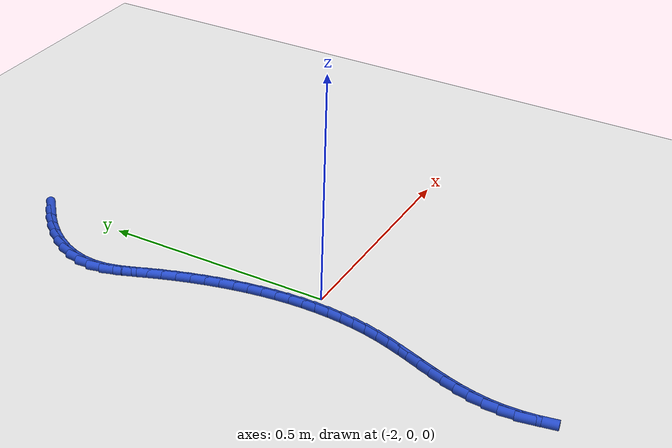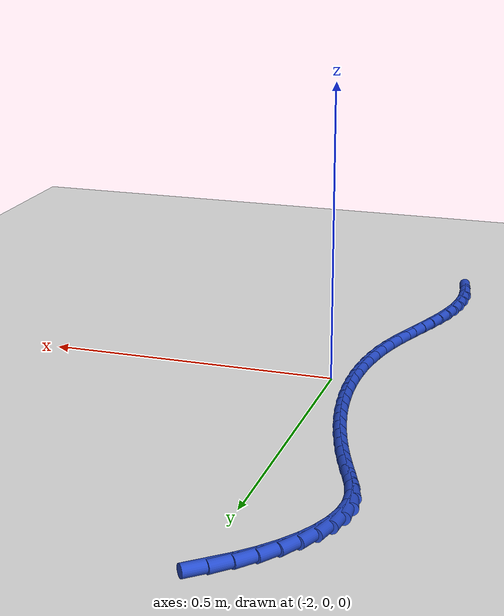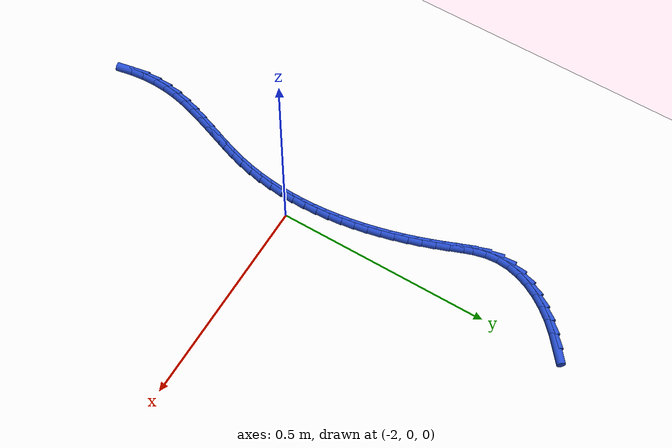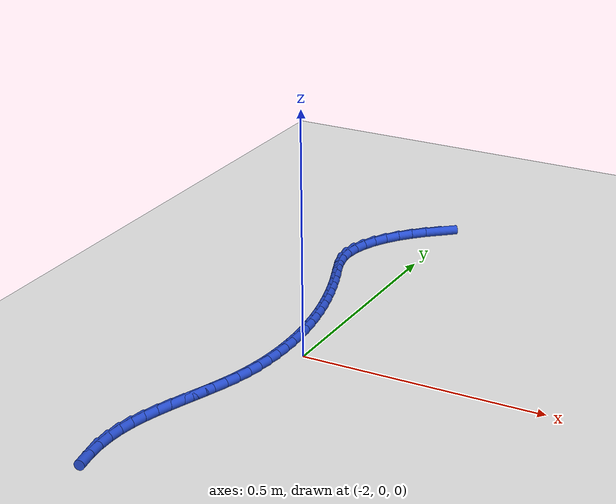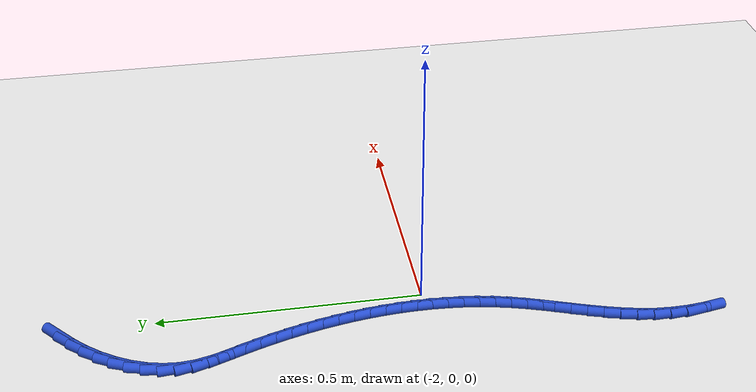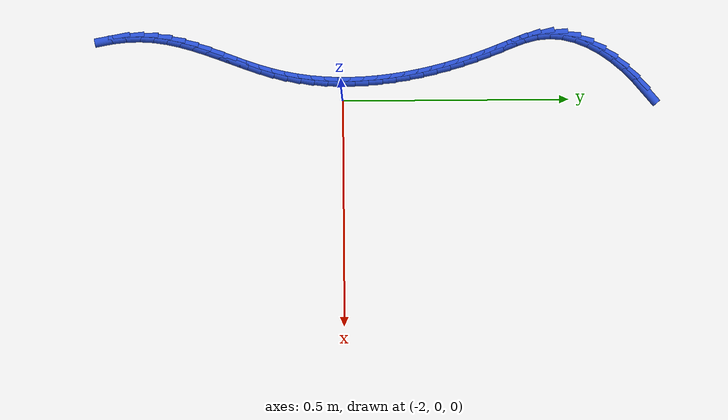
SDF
<sdf version="1.6">
 <world name="default">
  <model name="ground_plane">
   <static>1</static>
   <link name="link">
    <collision name="collision">
     <geometry><plane><normal>0 0 1</normal><size>100 100</size></plane></geometry>
     <surface><friction><ode><mu>100</mu><mu2>50</mu2></ode></friction></surface>
    </collision>
    <visual name="visual">
     <cast_shadows>0</cast_shadows>
     <geometry><plane><normal>0 0 1</normal><size>100 100</size></plane></geometry>
     <material>
      <script><uri>file://media/materials/scripts/gazebo.material</uri><name>Gazebo/WhiteGlow</name></script>
     </material>
    </visual>
   </link>
  </model>
  <model name="line">
   <link name="link_106">
    <pose>-2.019120130533981 0.668837818976214 0.01 0 1.57 0.7063443962029463</pose>
    <collision name="collision">
     <geometry><cylinder><radius>0.01</radius><length>0.08</length></cylinder></geometry>
    </collision>
    <visual name="visual">
     <material>
      <script><name>Gazebo/Blue</name><uri>file://media/materials/scripts/gazebo.material</uri></script>
     </material>
     <geometry><cylinder><radius>0.01</radius><length>0.08</length></cylinder></geometry>
    </visual>
   </link>
   <link name="link_107">
    <pose>-2.0448865321748246 0.6468541255301499 0.01 0 1.57 0.7850376694560548</pose>
    <collision name="collision">
     <geometry><cylinder><radius>0.01</radius><length>0.08</length></cylinder></geometry>
    </collision>
    <visual name="visual">
     <material>
      <script><name>Gazebo/Blue</name><uri>file://media/materials/scripts/gazebo.material</uri></script>
     </material>
     <geometry><cylinder><radius>0.01</radius><length>0.08</length></cylinder></geometry>
    </visual>
   </link>
   <link name="link_108">
    <pose>-2.0685367277766473 0.6232209752887709 0.01 0 1.57 0.8699692393952512</pose>
    <collision name="collision">
     <geometry><cylinder><radius>0.01</radius><length>0.08</length></cylinder></geometry>
    </collision>
    <visual name="visual">
     <material>
      <script><name>Gazebo/Blue</name><uri>file://media/materials/scripts/gazebo.material</uri></script>
     </material>
     <geometry><cylinder><radius>0.01</radius><length>0.08</length></cylinder></geometry>
    </visual>
   </link>
   <link name="link_109">
    <pose>-2.0896671348549702 0.5981761416220918 0.01 0 1.57 0.9638195948161816</pose>
    <collision name="collision">
     <geometry><cylinder><radius>0.01</radius><length>0.08</length></cylinder></geometry>
    </collision>
    <visual name="visual">
     <material>
      <script><name>Gazebo/Blue</name><uri>file://media/materials/scripts/gazebo.material</uri></script>
     </material>
     <geometry><cylinder><radius>0.01</radius><length>0.08</length></cylinder></geometry>
    </visual>
   </link>
   <link name="link_110">
    <pose>-2.107874170925314 0.5719573979001288 0.01 0 1.57 1.0695123483606348</pose>
    <collision name="collision">
     <geometry><cylinder><radius>0.01</radius><length>0.08</length></cylinder></geometry>
    </collision>
    <visual name="visual">
     <material>
      <script><name>Gazebo/Blue</name><uri>file://media/materials/scripts/gazebo.material</uri></script>
     </material>
     <geometry><cylinder><radius>0.01</radius><length>0.08</length></cylinder></geometry>
    </visual>
   </link>
   <link name="link_111">
    <pose>-2.1227542535032016 0.5448025174928974 0.01 0 1.57 1.1900346624650815</pose>
    <collision name="collision">
     <geometry><cylinder><radius>0.01</radius><length>0.08</length></cylinder></geometry>
    </collision>
    <visual name="visual">
     <material>
      <script><name>Gazebo/Blue</name><uri>file://media/materials/scripts/gazebo.material</uri></script>
     </material>
     <geometry><cylinder><radius>0.01</radius><length>0.08</length></cylinder></geometry>
    </visual>
   </link>
   <link name="link_112">
    <pose>-2.1339038001041524 0.5169492737704132 0.01 0 1.57 1.3279139398899185</pose>
    <collision name="collision">
     <geometry><cylinder><radius>0.01</radius><length>0.08</length></cylinder></geometry>
    </collision>
    <visual name="visual">
     <material>
      <script><name>Gazebo/Blue</name><uri>file://media/materials/scripts/gazebo.material</uri></script>
     </material>
     <geometry><cylinder><radius>0.01</radius><length>0.08</length></cylinder></geometry>
    </visual>
   </link>
   <link name="link_113">
    <pose>-2.1409192282436895 0.4886354401026921 0.01 0 1.57 1.4841873926816609</pose>
    <collision name="collision">
     <geometry><cylinder><radius>0.01</radius><length>0.08</length></cylinder></geometry>
    </collision>
    <visual name="visual">
     <material>
      <script><name>Gazebo/Blue</name><uri>file://media/materials/scripts/gazebo.material</uri></script>
     </material>
     <geometry><cylinder><radius>0.01</radius><length>0.08</length></cylinder></geometry>
    </visual>
   </link>
   <link name="link_114">
    <pose>-2.1433969554373338 0.46009878985974956 0.01 0 1.57 -1.4849348605510264</pose>
    <collision name="collision">
     <geometry><cylinder><radius>0.01</radius><length>0.08</length></cylinder></geometry>
    </collision>
    <visual name="visual">
     <material>
      <script><name>Gazebo/Blue</name><uri>file://media/materials/scripts/gazebo.material</uri></script>
     </material>
     <geometry><cylinder><radius>0.01</radius><length>0.08</length></cylinder></geometry>
    </visual>
   </link>
   <link name="link_115">
    <pose>-2.1409418708116563 0.4315755343451589 0.01 0 1.57 -1.3272464347808348</pose>
    <collision name="collision">
     <geometry><cylinder><radius>0.01</radius><length>0.08</length></cylinder></geometry>
    </collision>
    <visual name="visual">
     <material>
      <script><name>Gazebo/Blue</name><uri>file://media/materials/scripts/gazebo.material</uri></script>
     </material>
     <geometry><cylinder><radius>0.01</radius><length>0.08</length></cylinder></geometry>
    </visual>
   </link>
   <link name="link_116">
    <pose>-2.1338831783702465 0.4031683296323735 0.01 0 1.57 -1.2304661388986948</pose>
    <collision name="collision">
     <geometry><cylinder><radius>0.01</radius><length>0.08</length></cylinder></geometry>
    </collision>
    <visual name="visual">
     <material>
      <script><name>Gazebo/Blue</name><uri>file://media/materials/scripts/gazebo.material</uri></script>
     </material>
     <geometry><cylinder><radius>0.01</radius><length>0.08</length></cylinder></geometry>
    </visual>
   </link>
   <link name="link_117">
    <pose>-2.1238185698141594 0.37474593743244455 0.01 0 1.57 -1.1930753983688038</pose>
    <collision name="collision">
     <geometry><cylinder><radius>0.01</radius><length>0.08</length></cylinder></geometry>
    </collision>
    <visual name="visual">
     <material>
      <script><name>Gazebo/Blue</name><uri>file://media/materials/scripts/gazebo.material</uri></script>
     </material>
     <geometry><cylinder><radius>0.01</radius><length>0.08</length></cylinder></geometry>
    </visual>
   </link>
   <link name="link_118">
    <pose>-2.1124738748173266 0.3461534923061356 0.01 0 1.57 -1.2052805158109365</pose>
    <collision name="collision">
     <geometry><cylinder><radius>0.01</radius><length>0.08</length></cylinder></geometry>
    </collision>
    <visual name="visual">
     <material>
      <script><name>Gazebo/Blue</name><uri>file://media/materials/scripts/gazebo.material</uri></script>
     </material>
     <geometry><cylinder><radius>0.01</radius><length>0.08</length></cylinder></geometry>
    </visual>
   </link>
   <link name="link_119">
    <pose>-2.1014140225733966 0.3172549613504711 0.01 0 1.57 -1.2322971017224593</pose>
    <collision name="collision">
     <geometry><cylinder><radius>0.01</radius><length>0.08</length></cylinder></geometry>
    </collision>
    <visual name="visual">
     <material>
      <script><name>Gazebo/Blue</name><uri>file://media/materials/scripts/gazebo.material</uri></script>
     </material>
     <geometry><cylinder><radius>0.01</radius><length>0.08</length></cylinder></geometry>
    </visual>
   </link>
   <link name="link_120">
    <pose>-2.0911289650799647 0.2880401319644935 0.01 0 1.57 -1.260352981139677</pose>
    <collision name="collision">
     <geometry><cylinder><radius>0.01</radius><length>0.08</length></cylinder></geometry>
    </collision>
    <visual name="visual">
     <material>
      <script><name>Gazebo/Blue</name><uri>file://media/materials/scripts/gazebo.material</uri></script>
     </material>
     <geometry><cylinder><radius>0.01</radius><length>0.08</length></cylinder></geometry>
    </visual>
   </link>
   <link name="link_121">
    <pose>-2.0816681587843533 0.25855034918342196 0.01 0 1.57 -1.289510784778855</pose>
    <collision name="collision">
     <geometry><cylinder><radius>0.01</radius><length>0.08</length></cylinder></geometry>
    </collision>
    <visual name="visual">
     <material>
      <script><name>Gazebo/Blue</name><uri>file://media/materials/scripts/gazebo.material</uri></script>
     </material>
     <geometry><cylinder><radius>0.01</radius><length>0.08</length></cylinder></geometry>
    </visual>
   </link>
   <link name="link_122">
    <pose>-2.0730797285846614 0.22882711389315483 0.01 0 1.57 -1.319876181940356</pose>
    <collision name="collision">
     <geometry><cylinder><radius>0.01</radius><length>0.08</length></cylinder></geometry>
    </collision>
    <visual name="visual">
     <material>
      <script><name>Gazebo/Blue</name><uri>file://media/materials/scripts/gazebo.material</uri></script>
     </material>
     <geometry><cylinder><radius>0.01</radius><length>0.08</length></cylinder></geometry>
    </visual>
   </link>
   <link name="link_123">
    <pose>-2.065411799378987 0.19891192697959037 0.01 0 1.57 -1.351555336564568</pose>
    <collision name="collision">
     <geometry><cylinder><radius>0.01</radius><length>0.08</length></cylinder></geometry>
    </collision>
    <visual name="visual">
     <material>
      <script><name>Gazebo/Blue</name><uri>file://media/materials/scripts/gazebo.material</uri></script>
     </material>
     <geometry><cylinder><radius>0.01</radius><length>0.08</length></cylinder></geometry>
    </visual>
   </link>
   <link name="link_124">
    <pose>-2.058712496065431 0.16884628932862678 0.01 0 1.57 -1.3846539687039063</pose>
    <collision name="collision">
     <geometry><cylinder><radius>0.01</radius><length>0.08</length></cylinder></geometry>
    </collision>
    <visual name="visual">
     <material>
      <script><name>Gazebo/Blue</name><uri>file://media/materials/scripts/gazebo.material</uri></script>
     </material>
     <geometry><cylinder><radius>0.01</radius><length>0.08</length></cylinder></geometry>
    </visual>
   </link>
   <link name="link_125">
    <pose>-2.0530299435420902 0.1386717018261622 0.01 0 1.57 -1.4192759606351901</pose>
    <collision name="collision">
     <geometry><cylinder><radius>0.01</radius><length>0.08</length></cylinder></geometry>
    </collision>
    <visual name="visual">
     <material>
      <script><name>Gazebo/Blue</name><uri>file://media/materials/scripts/gazebo.material</uri></script>
     </material>
     <geometry><cylinder><radius>0.01</radius><length>0.08</length></cylinder></geometry>
    </visual>
   </link>
   <link name="link_126">
    <pose>-2.048412266707065 0.10842966535809484 0.01 0 1.57 -1.4555214315704215</pose>
    <collision name="collision">
     <geometry><cylinder><radius>0.01</radius><length>0.08</length></cylinder></geometry>
    </collision>
    <visual name="visual">
     <material>
      <script><name>Gazebo/Blue</name><uri>file://media/materials/scripts/gazebo.material</uri></script>
     </material>
     <geometry><cylinder><radius>0.01</radius><length>0.08</length></cylinder></geometry>
    </visual>
   </link>
   <link name="link_127">
    <pose>-2.044907590458455 0.07816168081032279 0.01 0 1.57 -1.4934842065643024</pose>
    <collision name="collision">
     <geometry><cylinder><radius>0.01</radius><length>0.08</length></cylinder></geometry>
    </collision>
    <visual name="visual">
     <material>
      <script><name>Gazebo/Blue</name><uri>file://media/materials/scripts/gazebo.material</uri></script>
     </material>
     <geometry><cylinder><radius>0.01</radius><length>0.08</length></cylinder></geometry>
    </visual>
   </link>
   <link name="link_128">
    <pose>-2.042564039694357 0.04790924906874425 0.01 0 1.57 -1.5332486175912141</pose>
    <collision name="collision">
     <geometry><cylinder><radius>0.01</radius><length>0.08</length></cylinder></geometry>
    </collision>
    <visual name="visual">
     <material>
      <script><name>Gazebo/Blue</name><uri>file://media/materials/scripts/gazebo.material</uri></script>
     </material>
     <geometry><cylinder><radius>0.01</radius><length>0.08</length></cylinder></geometry>
    </visual>
   </link>
   <link name="link_129">
    <pose>-2.041429739312873 0.01771387101925742 0.01 0 1.57 1.5667070509509982</pose>
    <collision name="collision">
     <geometry><cylinder><radius>0.01</radius><length>0.08</length></cylinder></geometry>
    </collision>
    <visual name="visual">
     <material>
      <script><name>Gazebo/Blue</name><uri>file://media/materials/scripts/gazebo.material</uri></script>
     </material>
     <geometry><cylinder><radius>0.01</radius><length>0.08</length></cylinder></geometry>
    </visual>
   </link>
   <link name="link_130">
    <pose>-2.0415528142121007 -0.01238295245223954 0.01 0 1.57 1.5231445364297875</pose>
    <collision name="collision">
     <geometry><cylinder><radius>0.01</radius><length>0.08</length></cylinder></geometry>
    </collision>
    <visual name="visual">
     <material>
      <script><name>Gazebo/Blue</name><uri>file://media/materials/scripts/gazebo.material</uri></script>
     </material>
     <geometry><cylinder><radius>0.01</radius><length>0.08</length></cylinder></geometry>
    </visual>
   </link>
   <link name="link_131">
    <pose>-2.042981389290138 -0.04233972045984847 0.01 0 1.57 1.4776267078582606</pose>
    <collision name="collision">
     <geometry><cylinder><radius>0.01</radius><length>0.08</length></cylinder></geometry>
    </collision>
    <visual name="visual">
     <material>
      <script><name>Gazebo/Blue</name><uri>file://media/materials/scripts/gazebo.material</uri></script>
     </material>
     <geometry><cylinder><radius>0.01</radius><length>0.08</length></cylinder></geometry>
    </visual>
   </link>
   <link name="link_132">
    <pose>-2.045763589445086 -0.0721149321176712 0.01 0 1.57 1.4301525514528652</pose>
    <collision name="collision">
     <geometry><cylinder><radius>0.01</radius><length>0.08</length></cylinder></geometry>
    </collision>
    <visual name="visual">
     <material>
      <script><name>Gazebo/Blue</name><uri>file://media/materials/scripts/gazebo.material</uri></script>
     </material>
     <geometry><cylinder><radius>0.01</radius><length>0.08</length></cylinder></geometry>
    </visual>
   </link>
   <link name="link_133">
    <pose>-2.0499475395750433 -0.10166708653980956 0.01 0 1.57 1.380755523516354</pose>
    <collision name="collision">
     <geometry><cylinder><radius>0.01</radius><length>0.08</length></cylinder></geometry>
    </collision>
    <visual name="visual">
     <material>
      <script><name>Gazebo/Blue</name><uri>file://media/materials/scripts/gazebo.material</uri></script>
     </material>
     <geometry><cylinder><radius>0.01</radius><length>0.08</length></cylinder></geometry>
    </visual>
   </link>
   <link name="link_134">
    <pose>-2.0555813645781074 -0.13095468284036535 0.01 0 1.57 1.3295090637816644</pose>
    <collision name="collision">
     <geometry><cylinder><radius>0.01</radius><length>0.08</length></cylinder></geometry>
    </collision>
    <visual name="visual">
     <material>
      <script><name>Gazebo/Blue</name><uri>file://media/materials/scripts/gazebo.material</uri></script>
     </material>
     <geometry><cylinder><radius>0.01</radius><length>0.08</length></cylinder></geometry>
    </visual>
   </link>
   <link name="link_135">
    <pose>-2.062713184666212 -0.1599362214776525 0.01 0 1.57 1.2797953220021538</pose>
    <collision name="collision">
     <geometry><cylinder><radius>0.01</radius><length>0.08</length></cylinder></geometry>
    </collision>
    <visual name="visual">
     <material>
      <script><name>Gazebo/Blue</name><uri>file://media/materials/scripts/gazebo.material</uri></script>
     </material>
     <geometry><cylinder><radius>0.01</radius><length>0.08</length></cylinder></geometry>
    </visual>
   </link>
   <link name="link_136">
    <pose>-2.0712972222731603 -0.1885971371857171 0.01 0 1.57 1.2433070193562865</pose>
    <collision name="collision">
     <geometry><cylinder><radius>0.01</radius><length>0.08</length></cylinder></geometry>
    </collision>
    <visual name="visual">
     <material>
      <script><name>Gazebo/Blue</name><uri>file://media/materials/scripts/gazebo.material</uri></script>
     </material>
     <geometry><cylinder><radius>0.01</radius><length>0.08</length></cylinder></geometry>
    </visual>
   </link>
   <link name="link_137">
    <pose>-2.0809527370587904 -0.21701894769326258 0.01 0 1.57 1.2224655590273925</pose>
    <collision name="collision">
     <geometry><cylinder><radius>0.01</radius><length>0.08</length></cylinder></geometry>
    </collision>
    <visual name="visual">
     <material>
      <script><name>Gazebo/Blue</name><uri>file://media/materials/scripts/gazebo.material</uri></script>
     </material>
     <geometry><cylinder><radius>0.01</radius><length>0.08</length></cylinder></geometry>
    </visual>
   </link>
   <link name="link_138">
    <pose>-2.0912243274181517 -0.2453045870727261 0.01 0 1.57 1.2170742397864347</pose>
    <collision name="collision">
     <geometry><cylinder><radius>0.01</radius><length>0.08</length></cylinder></geometry>
    </collision>
    <visual name="visual">
     <material>
      <script><name>Gazebo/Blue</name><uri>file://media/materials/scripts/gazebo.material</uri></script>
     </material>
     <geometry><cylinder><radius>0.01</radius><length>0.08</length></cylinder></geometry>
    </visual>
   </link>
   <link name="link_139">
    <pose>-2.101656591746296 -0.27355698939654516 0.01 0 1.57 1.2270679610755888</pose>
    <collision name="collision">
     <geometry><cylinder><radius>0.01</radius><length>0.08</length></cylinder></geometry>
    </collision>
    <visual name="visual">
     <material>
      <script><name>Gazebo/Blue</name><uri>file://media/materials/scripts/gazebo.material</uri></script>
     </material>
     <geometry><cylinder><radius>0.01</radius><length>0.08</length></cylinder></geometry>
    </visual>
   </link>
   <link name="link_140">
    <pose>-2.1117941284382757 -0.30187908873715724 0.01 0 1.57 1.2525505801614565</pose>
    <collision name="collision">
     <geometry><cylinder><radius>0.01</radius><length>0.08</length></cylinder></geometry>
    </collision>
    <visual name="visual">
     <material>
      <script><name>Gazebo/Blue</name><uri>file://media/materials/scripts/gazebo.material</uri></script>
     </material>
     <geometry><cylinder><radius>0.01</radius><length>0.08</length></cylinder></geometry>
    </visual>
   </link>
   <link name="link_141">
    <pose>-2.1211815358891406 -0.33037381916699965 0.01 0 1.57 1.293724900458956</pose>
    <collision name="collision">
     <geometry><cylinder><radius>0.01</radius><length>0.08</length></cylinder></geometry>
    </collision>
    <visual name="visual">
     <material>
      <script><name>Gazebo/Blue</name><uri>file://media/materials/scripts/gazebo.material</uri></script>
     </material>
     <geometry><cylinder><radius>0.01</radius><length>0.08</length></cylinder></geometry>
    </visual>
   </link>
   <link name="link_142">
    <pose>-2.129363412493943 -0.3591441147585099 0.01 0 1.57 1.3507078660993672</pose>
    <collision name="collision">
     <geometry><cylinder><radius>0.01</radius><length>0.08</length></cylinder></geometry>
    </collision>
    <visual name="visual">
     <material>
      <script><name>Gazebo/Blue</name><uri>file://media/materials/scripts/gazebo.material</uri></script>
     </material>
     <geometry><cylinder><radius>0.01</radius><length>0.08</length></cylinder></geometry>
    </visual>
   </link>
   <link name="link_143">
    <pose>-2.135884356647735 -0.3882929095841254 0.01 0 1.57 1.4232244011979407</pose>
    <collision name="collision">
     <geometry><cylinder><radius>0.01</radius><length>0.08</length></cylinder></geometry>
    </collision>
    <visual name="visual">
     <material>
      <script><name>Gazebo/Blue</name><uri>file://media/materials/scripts/gazebo.material</uri></script>
     </material>
     <geometry><cylinder><radius>0.01</radius><length>0.08</length></cylinder></geometry>
    </visual>
   </link>
   <link name="link_144">
    <pose>-2.1402889667455653 -0.4179231377162833 0.01 0 1.57 1.5091855016811713</pose>
    <collision name="collision">
     <geometry><cylinder><radius>0.01</radius><length>0.08</length></cylinder></geometry>
    </collision>
    <visual name="visual">
     <material>
      <script><name>Gazebo/Blue</name><uri>file://media/materials/scripts/gazebo.material</uri></script>
     </material>
     <geometry><cylinder><radius>0.01</radius><length>0.08</length></cylinder></geometry>
    </visual>
   </link>
   <link name="link_145">
    <pose>-2.142151748789257 -0.44811952721982656 0.01 0 1.57 -1.5453405523405026</pose>
    <collision name="collision">
     <geometry><cylinder><radius>0.01</radius><length>0.08</length></cylinder></geometry>
    </collision>
    <visual name="visual">
     <material>
      <script><name>Gazebo/Blue</name><uri>file://media/materials/scripts/gazebo.material</uri></script>
     </material>
     <geometry><cylinder><radius>0.01</radius><length>0.08</length></cylinder></geometry>
    </visual>
   </link>
   <link name="link_146">
    <pose>-2.141371361918408 -0.47876948062521096 0.01 0 1.57 -1.46345512710151</pose>
    <collision name="collision">
     <geometry><cylinder><radius>0.01</radius><length>0.08</length></cylinder></geometry>
    </collision>
    <visual name="visual">
     <material>
      <script><name>Gazebo/Blue</name><uri>file://media/materials/scripts/gazebo.material</uri></script>
     </material>
     <geometry><cylinder><radius>0.01</radius><length>0.08</length></cylinder></geometry>
    </visual>
   </link>
   <link name="link_147">
    <pose>-2.1380449429013484 -0.509639578852394 0.01 0 1.57 -1.385851485270488</pose>
    <collision name="collision">
     <geometry><cylinder><radius>0.01</radius><length>0.08</length></cylinder></geometry>
    </collision>
    <visual name="visual">
     <material>
      <script><name>Gazebo/Blue</name><uri>file://media/materials/scripts/gazebo.material</uri></script>
     </material>
     <geometry><cylinder><radius>0.01</radius><length>0.08</length></cylinder></geometry>
    </visual>
   </link>
  </model>
 </world>
</sdf>
